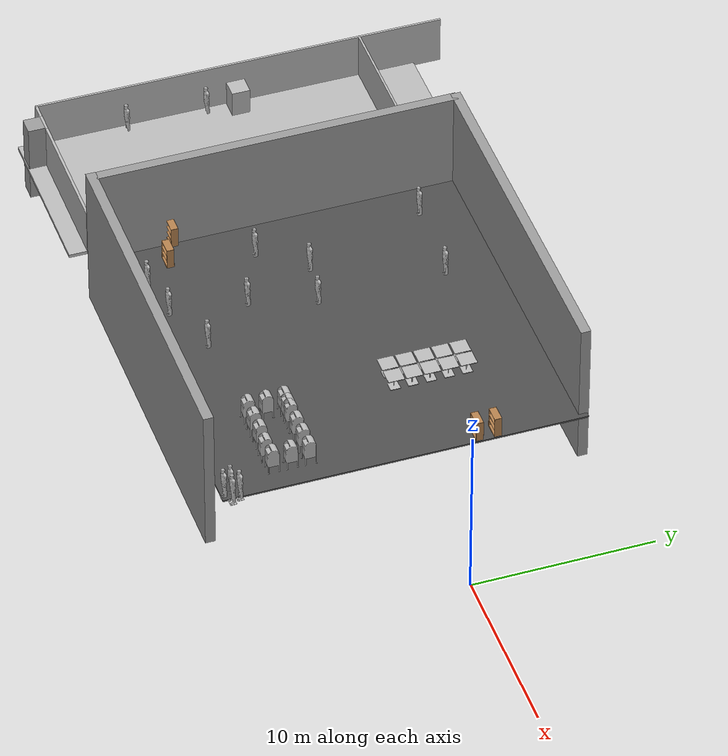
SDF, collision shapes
<sdf version="1.6">
 <model name="indoor_environment_4">
  <link name="link_0">
   <pose>-38.4667 -11.2928 0.5 0 -0 0</pose>
   <inertial>
    <mass>4.65205</mass>
    <inertia><ixx>8.77751</ixx><ixy>0</ixy><ixz>0</ixz><iyy>8.77751</iyy><iyz>0</iyz><izz>0.775344</izz></inertia>
   </inertial>
   <visual name="visual">
    <geometry><box><size>1 1 4.65206</size></box></geometry>
    <material>
     <lighting>1</lighting>
     <script><uri>file://media/materials/scripts/gazebo.material</uri><name>Gazebo/Grey</name></script>
     <ambient>0.3 0.3 0.3 1</ambient>
     <diffuse>0.7 0.7 0.7 1</diffuse>
     <specular>0.01 0.01 0.01 1</specular>
     <emissive>0 0 0 1</emissive>
    </material>
   </visual>
   <collision name="collision">
    <geometry><box><size>1 1 4.65206</size></box></geometry>
    <surface>
     <friction>
      <ode><mu>1</mu><mu2>1</mu2><fdir1>0 0 0</fdir1><slip1>0</slip1><slip2>0</slip2></ode>
      <torsional>
       <coefficient>1</coefficient>
       <patch_radius>0</patch_radius>
       <surface_radius>0</surface_radius>
       <use_patch_radius>1</use_patch_radius>
       <ode><slip>0</slip></ode>
      </torsional>
     </friction>
     <bounce><restitution_coefficient>0</restitution_coefficient><threshold>1e+06</threshold></bounce>
     <contact>
      <collide_without_contact>0</collide_without_contact>
      <collide_without_contact_bitmask>1</collide_without_contact_bitmask>
      <collide_bitmask>1</collide_bitmask>
      <ode>
       <soft_cfm>0</soft_cfm>
       <soft_erp>0.2</soft_erp>
       <kp>1e+13</kp>
       <kd>1</kd>
       <max_vel>0.01</max_vel>
       <min_depth>0</min_depth>
      </ode>
      <bullet>
       <split_impulse>1</split_impulse>
       <split_impulse_penetration_threshold>-0.01</split_impulse_penetration_threshold>
       <soft_cfm>0</soft_cfm>
       <soft_erp>0.2</soft_erp>
       <kp>1e+13</kp>
       <kd>1</kd>
      </bullet>
     </contact>
    </surface>
   </collision>
  </link>
  <model name="asphalt_plane_0">
   <static>1</static>
   <link name="link">
    <collision name="collision"><geometry><box><size>20 20 0.1</size></box></geometry></collision>
    <visual name="visual">
     <cast_shadows>0</cast_shadows>
     <geometry><box><size>20 20 0.1</size></box></geometry>
     <material>
      <script>
       <uri>model://asphalt_plane/materials/scripts</uri>
       <uri>model://asphalt_plane/materials/textures</uri>
       <name>vrc/asphalt</name>
      </script>
     </material>
    </visual>
   </link>
   <pose>-19.9097 0.04344 0 0 -0 0</pose>
  </model>
  <model name="bookshelf">
   <static>1</static>
   <link name="link">
    <inertial><mass>1</mass></inertial>
    <collision name="back">
     <pose>0 0.005 0.6 0 -0 0</pose>
     <geometry><box><size>0.9 0.01 1.2</size></box></geometry>
    </collision>
    <visual name="visual1">
     <pose>0 0.005 0.6 0 -0 0</pose>
     <geometry><box><size>0.9 0.01 1.2</size></box></geometry>
     <material>
      <script><uri>file://media/materials/scripts/gazebo.material</uri><name>Gazebo/Wood</name></script>
     </material>
    </visual>
    <collision name="left_side">
     <pose>0.45 -0.195 0.6 0 -0 0</pose>
     <geometry><box><size>0.02 0.4 1.2</size></box></geometry>
    </collision>
    <visual name="visual2">
     <pose>0.45 -0.195 0.6 0 -0 0</pose>
     <geometry><box><size>0.02 0.4 1.2</size></box></geometry>
     <material>
      <script><uri>file://media/materials/scripts/gazebo.material</uri><name>Gazebo/Wood</name></script>
     </material>
    </visual>
    <collision name="right_side">
     <pose>-0.45 -0.195 0.6 0 -0 0</pose>
     <geometry><box><size>0.02 0.4 1.2</size></box></geometry>
    </collision>
    <visual name="visual3">
     <pose>-0.45 -0.195 0.6 0 -0 0</pose>
     <geometry><box><size>0.02 0.4 1.2</size></box></geometry>
     <material>
      <script><uri>file://media/materials/scripts/gazebo.material</uri><name>Gazebo/Wood</name></script>
     </material>
    </visual>
    <collision name="bottom">
     <pose>0 -0.195 0.03 0 -0 0</pose>
     <geometry><box><size>0.88 0.4 0.06</size></box></geometry>
    </collision>
    <visual name="visual4">
     <pose>0 -0.195 0.03 0 -0 0</pose>
     <geometry><box><size>0.88 0.4 0.06</size></box></geometry>
     <material>
      <script><uri>file://media/materials/scripts/gazebo.material</uri><name>Gazebo/Wood</name></script>
     </material>
    </visual>
    <collision name="top">
     <pose>0 -0.195 1.19 0 -0 0</pose>
     <geometry><box><size>0.88 0.4 0.02</size></box></geometry>
    </collision>
    <visual name="visual5">
     <pose>0 -0.195 1.19 0 -0 0</pose>
     <geometry><box><size>0.88 0.4 0.02</size></box></geometry>
     <material>
      <script><uri>file://media/materials/scripts/gazebo.material</uri><name>Gazebo/Wood</name></script>
     </material>
    </visual>
    <collision name="low_shelf">
     <pose>0 -0.195 0.43 0 -0 0</pose>
     <geometry><box><size>0.88 0.4 0.02</size></box></geometry>
    </collision>
    <visual name="visual6">
     <pose>0 -0.195 0.43 0 -0 0</pose>
     <geometry><box><size>0.88 0.4 0.02</size></box></geometry>
     <material>
      <script><uri>file://media/materials/scripts/gazebo.material</uri><name>Gazebo/Wood</name></script>
     </material>
    </visual>
    <collision name="high_shelf">
     <pose>0 -0.195 0.8 0 -0 0</pose>
     <geometry><box><size>0.88 0.4 0.02</size></box></geometry>
    </collision>
    <visual name="visual7">
     <pose>0 -0.195 0.8 0 -0 0</pose>
     <geometry><box><size>0.88 0.4 0.02</size></box></geometry>
     <material>
      <script><uri>file://media/materials/scripts/gazebo.material</uri><name>Gazebo/Wood</name></script>
     </material>
    </visual>
   </link>
   <pose>-29.4638 -6.22637 0.552309 0 -0 0</pose>
  </model>
  <model name="bookshelf_clone">
   <static>1</static>
   <link name="link">
    <inertial><mass>1</mass></inertial>
    <collision name="back">
     <pose>0 0.005 0.6 0 -0 0</pose>
     <geometry><box><size>0.9 0.01 1.2</size></box></geometry>
    </collision>
    <visual name="visual1">
     <pose>0 0.005 0.6 0 -0 0</pose>
     <geometry><box><size>0.9 0.01 1.2</size></box></geometry>
     <material>
      <script><uri>file://media/materials/scripts/gazebo.material</uri><name>Gazebo/Wood</name></script>
     </material>
    </visual>
    <collision name="left_side">
     <pose>0.45 -0.195 0.6 0 -0 0</pose>
     <geometry><box><size>0.02 0.4 1.2</size></box></geometry>
    </collision>
    <visual name="visual2">
     <pose>0.45 -0.195 0.6 0 -0 0</pose>
     <geometry><box><size>0.02 0.4 1.2</size></box></geometry>
     <material>
      <script><uri>file://media/materials/scripts/gazebo.material</uri><name>Gazebo/Wood</name></script>
     </material>
    </visual>
    <collision name="right_side">
     <pose>-0.45 -0.195 0.6 0 -0 0</pose>
     <geometry><box><size>0.02 0.4 1.2</size></box></geometry>
    </collision>
    <visual name="visual3">
     <pose>-0.45 -0.195 0.6 0 -0 0</pose>
     <geometry><box><size>0.02 0.4 1.2</size></box></geometry>
     <material>
      <script><uri>file://media/materials/scripts/gazebo.material</uri><name>Gazebo/Wood</name></script>
     </material>
    </visual>
    <collision name="bottom">
     <pose>0 -0.195 0.03 0 -0 0</pose>
     <geometry><box><size>0.88 0.4 0.06</size></box></geometry>
    </collision>
    <visual name="visual4">
     <pose>0 -0.195 0.03 0 -0 0</pose>
     <geometry><box><size>0.88 0.4 0.06</size></box></geometry>
     <material>
      <script><uri>file://media/materials/scripts/gazebo.material</uri><name>Gazebo/Wood</name></script>
     </material>
    </visual>
    <collision name="top">
     <pose>0 -0.195 1.19 0 -0 0</pose>
     <geometry><box><size>0.88 0.4 0.02</size></box></geometry>
    </collision>
    <visual name="visual5">
     <pose>0 -0.195 1.19 0 -0 0</pose>
     <geometry><box><size>0.88 0.4 0.02</size></box></geometry>
     <material>
      <script><uri>file://media/materials/scripts/gazebo.material</uri><name>Gazebo/Wood</name></script>
     </material>
    </visual>
    <collision name="low_shelf">
     <pose>0 -0.195 0.43 0 -0 0</pose>
     <geometry><box><size>0.88 0.4 0.02</size></box></geometry>
    </collision>
    <visual name="visual6">
     <pose>0 -0.195 0.43 0 -0 0</pose>
     <geometry><box><size>0.88 0.4 0.02</size></box></geometry>
     <material>
      <script><uri>file://media/materials/scripts/gazebo.material</uri><name>Gazebo/Wood</name></script>
     </material>
    </visual>
    <collision name="high_shelf">
     <pose>0 -0.195 0.8 0 -0 0</pose>
     <geometry><box><size>0.88 0.4 0.02</size></box></geometry>
    </collision>
    <visual name="visual7">
     <pose>0 -0.195 0.8 0 -0 0</pose>
     <geometry><box><size>0.88 0.4 0.02</size></box></geometry>
     <material>
      <script><uri>file://media/materials/scripts/gazebo.material</uri><name>Gazebo/Wood</name></script>
     </material>
    </visual>
   </link>
   <pose>-27.9097 -6.95656 0.552309 0 -0 0</pose>
  </model>
  <model name="bookshelf_clone_12_clone_3">
   <static>1</static>
   <link name="link">
    <inertial><mass>1</mass></inertial>
    <collision name="back">
     <pose>0 0.005 0.6 0 -0 0</pose>
     <geometry><box><size>0.9 0.01 1.2</size></box></geometry>
    </collision>
    <visual name="visual1">
     <pose>0 0.005 0.6 0 -0 0</pose>
     <geometry><box><size>0.9 0.01 1.2</size></box></geometry>
     <material>
      <script><uri>file://media/materials/scripts/gazebo.material</uri><name>Gazebo/Wood</name></script>
     </material>
    </visual>
    <collision name="left_side">
     <pose>0.45 -0.195 0.6 0 -0 0</pose>
     <geometry><box><size>0.02 0.4 1.2</size></box></geometry>
    </collision>
    <visual name="visual2">
     <pose>0.45 -0.195 0.6 0 -0 0</pose>
     <geometry><box><size>0.02 0.4 1.2</size></box></geometry>
     <material>
      <script><uri>file://media/materials/scripts/gazebo.material</uri><name>Gazebo/Wood</name></script>
     </material>
    </visual>
    <collision name="right_side">
     <pose>-0.45 -0.195 0.6 0 -0 0</pose>
     <geometry><box><size>0.02 0.4 1.2</size></box></geometry>
    </collision>
    <visual name="visual3">
     <pose>-0.45 -0.195 0.6 0 -0 0</pose>
     <geometry><box><size>0.02 0.4 1.2</size></box></geometry>
     <material>
      <script><uri>file://media/materials/scripts/gazebo.material</uri><name>Gazebo/Wood</name></script>
     </material>
    </visual>
    <collision name="bottom">
     <pose>0 -0.195 0.03 0 -0 0</pose>
     <geometry><box><size>0.88 0.4 0.06</size></box></geometry>
    </collision>
    <visual name="visual4">
     <pose>0 -0.195 0.03 0 -0 0</pose>
     <geometry><box><size>0.88 0.4 0.06</size></box></geometry>
     <material>
      <script><uri>file://media/materials/scripts/gazebo.material</uri><name>Gazebo/Wood</name></script>
     </material>
    </visual>
    <collision name="top">
     <pose>0 -0.195 1.19 0 -0 0</pose>
     <geometry><box><size>0.88 0.4 0.02</size></box></geometry>
    </collision>
    <visual name="visual5">
     <pose>0 -0.195 1.19 0 -0 0</pose>
     <geometry><box><size>0.88 0.4 0.02</size></box></geometry>
     <material>
      <script><uri>file://media/materials/scripts/gazebo.material</uri><name>Gazebo/Wood</name></script>
     </material>
    </visual>
    <collision name="low_shelf">
     <pose>0 -0.195 0.43 0 -0 0</pose>
     <geometry><box><size>0.88 0.4 0.02</size></box></geometry>
    </collision>
    <visual name="visual6">
     <pose>0 -0.195 0.43 0 -0 0</pose>
     <geometry><box><size>0.88 0.4 0.02</size></box></geometry>
     <material>
      <script><uri>file://media/materials/scripts/gazebo.material</uri><name>Gazebo/Wood</name></script>
     </material>
    </visual>
    <collision name="high_shelf">
     <pose>0 -0.195 0.8 0 -0 0</pose>
     <geometry><box><size>0.88 0.4 0.02</size></box></geometry>
    </collision>
    <visual name="visual7">
     <pose>0 -0.195 0.8 0 -0 0</pose>
     <geometry><box><size>0.88 0.4 0.02</size></box></geometry>
     <material>
      <script><uri>file://media/materials/scripts/gazebo.material</uri><name>Gazebo/Wood</name></script>
     </material>
    </visual>
   </link>
   <pose>-9.9097 5.04344 0.552309 0 -0 0</pose>
  </model>
  <model name="bookshelf_clone_12_clone_8">
   <static>1</static>
   <link name="link">
    <inertial><mass>1</mass></inertial>
    <collision name="back">
     <pose>0 0.005 0.6 0 -0 0</pose>
     <geometry><box><size>0.9 0.01 1.2</size></box></geometry>
    </collision>
    <visual name="visual1">
     <pose>0 0.005 0.6 0 -0 0</pose>
     <geometry><box><size>0.9 0.01 1.2</size></box></geometry>
     <material>
      <script><uri>file://media/materials/scripts/gazebo.material</uri><name>Gazebo/Wood</name></script>
     </material>
    </visual>
    <collision name="left_side">
     <pose>0.45 -0.195 0.6 0 -0 0</pose>
     <geometry><box><size>0.02 0.4 1.2</size></box></geometry>
    </collision>
    <visual name="visual2">
     <pose>0.45 -0.195 0.6 0 -0 0</pose>
     <geometry><box><size>0.02 0.4 1.2</size></box></geometry>
     <material>
      <script><uri>file://media/materials/scripts/gazebo.material</uri><name>Gazebo/Wood</name></script>
     </material>
    </visual>
    <collision name="right_side">
     <pose>-0.45 -0.195 0.6 0 -0 0</pose>
     <geometry><box><size>0.02 0.4 1.2</size></box></geometry>
    </collision>
    <visual name="visual3">
     <pose>-0.45 -0.195 0.6 0 -0 0</pose>
     <geometry><box><size>0.02 0.4 1.2</size></box></geometry>
     <material>
      <script><uri>file://media/materials/scripts/gazebo.material</uri><name>Gazebo/Wood</name></script>
     </material>
    </visual>
    <collision name="bottom">
     <pose>0 -0.195 0.03 0 -0 0</pose>
     <geometry><box><size>0.88 0.4 0.06</size></box></geometry>
    </collision>
    <visual name="visual4">
     <pose>0 -0.195 0.03 0 -0 0</pose>
     <geometry><box><size>0.88 0.4 0.06</size></box></geometry>
     <material>
      <script><uri>file://media/materials/scripts/gazebo.material</uri><name>Gazebo/Wood</name></script>
     </material>
    </visual>
    <collision name="top">
     <pose>0 -0.195 1.19 0 -0 0</pose>
     <geometry><box><size>0.88 0.4 0.02</size></box></geometry>
    </collision>
    <visual name="visual5">
     <pose>0 -0.195 1.19 0 -0 0</pose>
     <geometry><box><size>0.88 0.4 0.02</size></box></geometry>
     <material>
      <script><uri>file://media/materials/scripts/gazebo.material</uri><name>Gazebo/Wood</name></script>
     </material>
    </visual>
    <collision name="low_shelf">
     <pose>0 -0.195 0.43 0 -0 0</pose>
     <geometry><box><size>0.88 0.4 0.02</size></box></geometry>
    </collision>
    <visual name="visual6">
     <pose>0 -0.195 0.43 0 -0 0</pose>
     <geometry><box><size>0.88 0.4 0.02</size></box></geometry>
     <material>
      <script><uri>file://media/materials/scripts/gazebo.material</uri><name>Gazebo/Wood</name></script>
     </material>
    </visual>
    <collision name="high_shelf">
     <pose>0 -0.195 0.8 0 -0 0</pose>
     <geometry><box><size>0.88 0.4 0.02</size></box></geometry>
    </collision>
    <visual name="visual7">
     <pose>0 -0.195 0.8 0 -0 0</pose>
     <geometry><box><size>0.88 0.4 0.02</size></box></geometry>
     <material>
      <script><uri>file://media/materials/scripts/gazebo.material</uri><name>Gazebo/Wood</name></script>
     </material>
    </visual>
   </link>
   <pose>-9.9097 4.04344 0.552309 0 -0 0</pose>
  </model>
  <model name="cafe">
   <static>1</static>
   <link name="link">
    <collision name="main_floor">
     <pose>-0.4 -0.75 0.0948 0 -0 0</pose>
     <geometry><box><size>9.38 22.63 0.19</size></box></geometry>
    </collision>
    <collision name="wall_1">
     <pose>-5.03 0.53 1.415 0 -0 0</pose>
     <geometry><box><size>0.12 23.16 2.83</size></box></geometry>
    </collision>
    <collision name="wall_2">
     <pose>4.24 -0.31 1.415 0 -0 0</pose>
     <geometry><box><size>0.12 21.48 2.83</size></box></geometry>
    </collision>
    <collision name="wall_3">
     <pose>-1.48 7.43 1.415 0 -0 0</pose>
     <geometry><box><size>7.2 0.12 2.83</size></box></geometry>
    </collision>
    <collision name="wall_4">
     <pose>2.09 8.9 1.435 0 -0 0</pose>
     <geometry><box><size>0.12 3.05 2.87</size></box></geometry>
    </collision>
    <collision name="wall_5">
     <pose>3.155 10.4 1.435 0 -0 0</pose>
     <geometry><box><size>2.13 0.12 2.87</size></box></geometry>
    </collision>
    <collision name="wall_6">
     <pose>0.615 -10.98 1.415 0 -0 0</pose>
     <geometry><box><size>7.36 0.15 2.83</size></box></geometry>
    </collision>
    <collision name="wall_7">
     <pose>-4.62 -10.98 1.415 0 -0 0</pose>
     <geometry><box><size>0.93 0.15 2.83</size></box></geometry>
    </collision>
    <collision name="wall_8">
     <pose>-3.61 -10.98 2.69 0 -0 0</pose>
     <geometry><box><size>1.09 0.15 0.28</size></box></geometry>
    </collision>
    <collision name="coke">
     <pose>-4.385 0.26 0.95 0 -0 0</pose>
     <geometry><box><size>1.03 1.03 1.52</size></box></geometry>
    </collision>
    <visual name="visual"><geometry><mesh><uri>model://cafe/meshes/cafe.dae</uri></mesh></geometry></visual>
   </link>
   <pose>-34.8337 0.212639 0 0 -0 0</pose>
  </model>
  <model name="cafe_table_clone_1_clone_clone">
   <static>1</static>
   <link name="link">
    <collision name="surface">
     <pose>0 0 0.755 0 -0 0</pose>
     <geometry><box><size>0.913 0.913 0.04</size></box></geometry>
    </collision>
    <collision name="column">
     <pose>0 0 0.37 0 -0 0</pose>
     <geometry><box><size>0.042 0.042 0.74</size></box></geometry>
    </collision>
    <collision name="base">
     <pose>0 0 0.02 0 -0 0</pose>
     <geometry><box><size>0.56 0.56 0.04</size></box></geometry>
    </collision>
    <visual name="visual">
     <geometry><mesh><uri>model://cafe_table/meshes/cafe_table.dae</uri></mesh></geometry>
    </visual>
   </link>
   <pose>-15.9097 5.04344 0.457011 0 -0 0</pose>
  </model>
  <model name="cafe_table_clone_1_clone_clone_0">
   <static>1</static>
   <link name="link">
    <collision name="surface">
     <pose>0 0 0.755 0 -0 0</pose>
     <geometry><box><size>0.913 0.913 0.04</size></box></geometry>
    </collision>
    <collision name="column">
     <pose>0 0 0.37 0 -0 0</pose>
     <geometry><box><size>0.042 0.042 0.74</size></box></geometry>
    </collision>
    <collision name="base">
     <pose>0 0 0.02 0 -0 0</pose>
     <geometry><box><size>0.56 0.56 0.04</size></box></geometry>
    </collision>
    <visual name="visual">
     <geometry><mesh><uri>model://cafe_table/meshes/cafe_table.dae</uri></mesh></geometry>
    </visual>
   </link>
   <pose>-15.9097 4.04344 0.457011 0 -0 0</pose>
  </model>
  <model name="cafe_table_clone_1_clone_clone_1">
   <static>1</static>
   <link name="link">
    <collision name="surface">
     <pose>0 0 0.755 0 -0 0</pose>
     <geometry><box><size>0.913 0.913 0.04</size></box></geometry>
    </collision>
    <collision name="column">
     <pose>0 0 0.37 0 -0 0</pose>
     <geometry><box><size>0.042 0.042 0.74</size></box></geometry>
    </collision>
    <collision name="base">
     <pose>0 0 0.02 0 -0 0</pose>
     <geometry><box><size>0.56 0.56 0.04</size></box></geometry>
    </collision>
    <visual name="visual">
     <geometry><mesh><uri>model://cafe_table/meshes/cafe_table.dae</uri></mesh></geometry>
    </visual>
   </link>
   <pose>-15.9097 3.04344 0.457011 0 -0 0</pose>
  </model>
  <model name="cafe_table_clone_1_clone_clone_2">
   <static>1</static>
   <link name="link">
    <collision name="surface">
     <pose>0 0 0.755 0 -0 0</pose>
     <geometry><box><size>0.913 0.913 0.04</size></box></geometry>
    </collision>
    <collision name="column">
     <pose>0 0 0.37 0 -0 0</pose>
     <geometry><box><size>0.042 0.042 0.74</size></box></geometry>
    </collision>
    <collision name="base">
     <pose>0 0 0.02 0 -0 0</pose>
     <geometry><box><size>0.56 0.56 0.04</size></box></geometry>
    </collision>
    <visual name="visual">
     <geometry><mesh><uri>model://cafe_table/meshes/cafe_table.dae</uri></mesh></geometry>
    </visual>
   </link>
   <pose>-15.9097 2.04344 0.457011 0 -0 0</pose>
  </model>
  <model name="cafe_table_clone_1_clone_clone_3">
   <static>1</static>
   <link name="link">
    <collision name="surface">
     <pose>0 0 0.755 0 -0 0</pose>
     <geometry><box><size>0.913 0.913 0.04</size></box></geometry>
    </collision>
    <collision name="column">
     <pose>0 0 0.37 0 -0 0</pose>
     <geometry><box><size>0.042 0.042 0.74</size></box></geometry>
    </collision>
    <collision name="base">
     <pose>0 0 0.02 0 -0 0</pose>
     <geometry><box><size>0.56 0.56 0.04</size></box></geometry>
    </collision>
    <visual name="visual">
     <geometry><mesh><uri>model://cafe_table/meshes/cafe_table.dae</uri></mesh></geometry>
    </visual>
   </link>
   <pose>-15.9097 1.04344 0.457011 0 -0 0</pose>
  </model>
  <model name="cafe_table_clone_1_clone_clone_4">
   <static>1</static>
   <link name="link">
    <collision name="surface">
     <pose>0 0 0.755 0 -0 0</pose>
     <geometry><box><size>0.913 0.913 0.04</size></box></geometry>
    </collision>
    <collision name="column">
     <pose>0 0 0.37 0 -0 0</pose>
     <geometry><box><size>0.042 0.042 0.74</size></box></geometry>
    </collision>
    <collision name="base">
     <pose>0 0 0.02 0 -0 0</pose>
     <geometry><box><size>0.56 0.56 0.04</size></box></geometry>
    </collision>
    <visual name="visual">
     <geometry><mesh><uri>model://cafe_table/meshes/cafe_table.dae</uri></mesh></geometry>
    </visual>
   </link>
   <pose>-14.9097 5.04344 0.457011 0 -0 0</pose>
  </model>
  <model name="cafe_table_clone_1_clone_clone_5">
   <static>1</static>
   <link name="link">
    <collision name="surface">
     <pose>0 0 0.755 0 -0 0</pose>
     <geometry><box><size>0.913 0.913 0.04</size></box></geometry>
    </collision>
    <collision name="column">
     <pose>0 0 0.37 0 -0 0</pose>
     <geometry><box><size>0.042 0.042 0.74</size></box></geometry>
    </collision>
    <collision name="base">
     <pose>0 0 0.02 0 -0 0</pose>
     <geometry><box><size>0.56 0.56 0.04</size></box></geometry>
    </collision>
    <visual name="visual">
     <geometry><mesh><uri>model://cafe_table/meshes/cafe_table.dae</uri></mesh></geometry>
    </visual>
   </link>
   <pose>-14.9097 4.04344 0.457011 0 -0 0</pose>
  </model>
  <model name="cafe_table_clone_1_clone_clone_6">
   <static>1</static>
   <link name="link">
    <collision name="surface">
     <pose>0 0 0.755 0 -0 0</pose>
     <geometry><box><size>0.913 0.913 0.04</size></box></geometry>
    </collision>
    <collision name="column">
     <pose>0 0 0.37 0 -0 0</pose>
     <geometry><box><size>0.042 0.042 0.74</size></box></geometry>
    </collision>
    <collision name="base">
     <pose>0 0 0.02 0 -0 0</pose>
     <geometry><box><size>0.56 0.56 0.04</size></box></geometry>
    </collision>
    <visual name="visual">
     <geometry><mesh><uri>model://cafe_table/meshes/cafe_table.dae</uri></mesh></geometry>
    </visual>
   </link>
   <pose>-14.9097 3.04344 0.457011 0 -0 0</pose>
  </model>
  <model name="cafe_table_clone_1_clone_clone_7">
   <static>1</static>
   <link name="link">
    <collision name="surface">
     <pose>0 0 0.755 0 -0 0</pose>
     <geometry><box><size>0.913 0.913 0.04</size></box></geometry>
    </collision>
    <collision name="column">
     <pose>0 0 0.37 0 -0 0</pose>
     <geometry><box><size>0.042 0.042 0.74</size></box></geometry>
    </collision>
    <collision name="base">
     <pose>0 0 0.02 0 -0 0</pose>
     <geometry><box><size>0.56 0.56 0.04</size></box></geometry>
    </collision>
    <visual name="visual">
     <geometry><mesh><uri>model://cafe_table/meshes/cafe_table.dae</uri></mesh></geometry>
    </visual>
   </link>
   <pose>-14.9097 2.04344 0.457011 0 -0 0</pose>
  </model>
  <model name="cafe_table_clone_1_clone_clone_8">
   <static>1</static>
   <link name="link">
    <collision name="surface">
     <pose>0 0 0.755 0 -0 0</pose>
     <geometry><box><size>0.913 0.913 0.04</size></box></geometry>
    </collision>
    <collision name="column">
     <pose>0 0 0.37 0 -0 0</pose>
     <geometry><box><size>0.042 0.042 0.74</size></box></geometry>
    </collision>
    <collision name="base">
     <pose>0 0 0.02 0 -0 0</pose>
     <geometry><box><size>0.56 0.56 0.04</size></box></geometry>
    </collision>
    <visual name="visual">
     <geometry><mesh><uri>model://cafe_table/meshes/cafe_table.dae</uri></mesh></geometry>
    </visual>
   </link>
   <pose>-14.9097 1.04344 0.457011 0 -0 0</pose>
  </model>
  <model name="grey_wall_mw_clone">
   <link name="link">
    <pose>-8.81665 -2.69351 1.4 0 -0 0</pose>
    <inertial>
     <inertia><ixx>nan</ixx><ixy>0</ixy><ixz>0</ixz><iyy>nan</iyy><iyz>0</iyz><izz>nan</izz></inertia>
     <mass>0</mass>
    </inertial>
    <visual name="visual">
     <cast_shadows>0</cast_shadows>
     <geometry><box><size>20.2056 0.556506 8.63552</size></box></geometry>
     <material>
      <script>
       <uri>model://grey_wall/materials/scripts</uri>
       <uri>model://grey_wall/materials/textures</uri>
       <name>vrc/grey_wall</name>
      </script>
      <ambient>1 1 1 1</ambient>
      <diffuse>1 1 1 1</diffuse>
      <specular>0 0 0 1</specular>
      <emissive>0 0 0 1</emissive>
     </material>
    </visual>
    <collision name="collision">
     <geometry><box><size>20.2056 0.556506 8.63552</size></box></geometry>
     <surface>
      <friction>
       <ode><mu>1</mu><mu2>1</mu2><fdir1>0 0 0</fdir1><slip1>0</slip1><slip2>0</slip2></ode>
       <torsional>
        <coefficient>1</coefficient>
        <patch_radius>0</patch_radius>
        <surface_radius>0</surface_radius>
        <use_patch_radius>1</use_patch_radius>
        <ode><slip>0</slip></ode>
       </torsional>
      </friction>
      <bounce><restitution_coefficient>0</restitution_coefficient><threshold>1e+06</threshold></bounce>
      <contact>
       <collide_without_contact>0</collide_without_contact>
       <collide_without_contact_bitmask>1</collide_without_contact_bitmask>
       <collide_bitmask>1</collide_bitmask>
       <ode>
        <soft_cfm>0</soft_cfm>
        <soft_erp>0.2</soft_erp>
        <kp>1e+13</kp>
        <kd>1</kd>
        <max_vel>0.01</max_vel>
        <min_depth>0</min_depth>
       </ode>
       <bullet>
        <split_impulse>1</split_impulse>
        <split_impulse_penetration_threshold>-0.01</split_impulse_penetration_threshold>
        <soft_cfm>0</soft_cfm>
        <soft_erp>0.2</soft_erp>
        <kp>1e+13</kp>
        <kd>1</kd>
       </bullet>
      </contact>
     </surface>
    </collision>
   </link>
   <static>1</static>
   <pose>-11.4681 12.5307 0 0 -0 0</pose>
  </model>
  <model name="grey_wall_mw_clone_0">
   <link name="link">
    <pose>-8.81665 -2.69351 1.4 0 -0 0</pose>
    <inertial>
     <inertia><ixx>nan</ixx><ixy>0</ixy><ixz>0</ixz><iyy>nan</iyy><iyz>0</iyz><izz>nan</izz></inertia>
     <mass>0</mass>
    </inertial>
    <visual name="visual">
     <cast_shadows>0</cast_shadows>
     <geometry><box><size>20.2056 0.556506 8.63552</size></box></geometry>
     <material>
      <script>
       <uri>model://grey_wall/materials/scripts</uri>
       <uri>model://grey_wall/materials/textures</uri>
       <name>vrc/grey_wall</name>
      </script>
      <ambient>1 1 1 1</ambient>
      <diffuse>1 1 1 1</diffuse>
      <specular>0 0 0 1</specular>
      <emissive>0 0 0 1</emissive>
     </material>
    </visual>
    <collision name="collision">
     <geometry><box><size>20.2056 0.556506 8.63552</size></box></geometry>
     <surface>
      <friction>
       <ode><mu>1</mu><mu2>1</mu2><fdir1>0 0 0</fdir1><slip1>0</slip1><slip2>0</slip2></ode>
       <torsional>
        <coefficient>1</coefficient>
        <patch_radius>0</patch_radius>
        <surface_radius>0</surface_radius>
        <use_patch_radius>1</use_patch_radius>
        <ode><slip>0</slip></ode>
       </torsional>
      </friction>
      <bounce><restitution_coefficient>0</restitution_coefficient><threshold>1e+06</threshold></bounce>
      <contact>
       <collide_without_contact>0</collide_without_contact>
       <collide_without_contact_bitmask>1</collide_without_contact_bitmask>
       <collide_bitmask>1</collide_bitmask>
       <ode>
        <soft_cfm>0</soft_cfm>
        <soft_erp>0.2</soft_erp>
        <kp>1e+13</kp>
        <kd>1</kd>
        <max_vel>0.01</max_vel>
        <min_depth>0</min_depth>
       </ode>
       <bullet>
        <split_impulse>1</split_impulse>
        <split_impulse_penetration_threshold>-0.01</split_impulse_penetration_threshold>
        <soft_cfm>0</soft_cfm>
        <soft_erp>0.2</soft_erp>
        <kp>1e+13</kp>
        <kd>1</kd>
       </bullet>
      </contact>
     </surface>
    </collision>
   </link>
   <static>1</static>
   <pose>-32.8438 8.53787 0 0 -0 1.57436</pose>
  </model>
  <model name="grey_wall_mw_clone_clone">
   <link name="link">
    <pose>-8.81665 -2.69351 1.4 0 -0 0</pose>
    <inertial>
     <inertia><ixx>nan</ixx><ixy>0</ixy><ixz>0</ixz><iyy>nan</iyy><iyz>0</iyz><izz>nan</izz></inertia>
     <mass>0</mass>
    </inertial>
    <visual name="visual">
     <cast_shadows>0</cast_shadows>
     <geometry><box><size>20.2056 0.556506 8.63552</size></box></geometry>
     <material>
      <script>
       <uri>model://grey_wall/materials/scripts</uri>
       <uri>model://grey_wall/materials/textures</uri>
       <name>vrc/grey_wall</name>
      </script>
      <ambient>1 1 1 1</ambient>
      <diffuse>1 1 1 1</diffuse>
      <specular>0 0 0 1</specular>
      <emissive>0 0 0 1</emissive>
     </material>
    </visual>
    <collision name="collision">
     <geometry><box><size>20.2056 0.556506 8.63552</size></box></geometry>
     <surface>
      <friction>
       <ode><mu>1</mu><mu2>1</mu2><fdir1>0 0 0</fdir1><slip1>0</slip1><slip2>0</slip2></ode>
       <torsional>
        <coefficient>1</coefficient>
        <patch_radius>0</patch_radius>
        <surface_radius>0</surface_radius>
        <use_patch_radius>1</use_patch_radius>
        <ode><slip>0</slip></ode>
       </torsional>
      </friction>
      <bounce><restitution_coefficient>0</restitution_coefficient><threshold>1e+06</threshold></bounce>
      <contact>
       <collide_without_contact>0</collide_without_contact>
       <collide_without_contact_bitmask>1</collide_without_contact_bitmask>
       <collide_bitmask>1</collide_bitmask>
       <ode>
        <soft_cfm>0</soft_cfm>
        <soft_erp>0.2</soft_erp>
        <kp>1e+13</kp>
        <kd>1</kd>
        <max_vel>0.01</max_vel>
        <min_depth>0</min_depth>
       </ode>
       <bullet>
        <split_impulse>1</split_impulse>
        <split_impulse_penetration_threshold>-0.01</split_impulse_penetration_threshold>
        <soft_cfm>0</soft_cfm>
        <soft_erp>0.2</soft_erp>
        <kp>1e+13</kp>
        <kd>1</kd>
       </bullet>
      </contact>
     </surface>
    </collision>
   </link>
   <static>1</static>
   <pose>-11.4609 -7.88749 0 0 -0 0</pose>
  </model>
  <model name="person_standing_clone_25">
   <link name="link">
    <inertial>
     <pose>0 -0.1 0.95 0 -0 0</pose>
     <mass>80</mass>
     <inertia><ixx>24.88</ixx><ixy>0</ixy><ixz>0</ixz><iyy>25.73</iyy><iyz>0</iyz><izz>2.48</izz></inertia>
    </inertial>
    <collision name="bottom">
     <pose>0 -0.1 0.01 0 -0 0</pose>
     <geometry><box><size>0.5 0.35 0.02</size></box></geometry>
    </collision>
    <collision name="person">
     <pose>0 0 0.02 0.04 -0 0</pose>
     <geometry><mesh><uri>model://person_standing/meshes/standing.dae</uri></mesh></geometry>
    </collision>
    <visual name="visual">
     <pose>0 0 0.02 0.04 -0 0</pose>
     <geometry><mesh><uri>model://person_standing/meshes/standing.dae</uri></mesh></geometry>
    </visual>
   </link>
   <pose>-24.4876 -8.1288 0 0 -0 0</pose>
  </model>
  <model name="person_standing_clone_26">
   <link name="link">
    <inertial>
     <pose>0 -0.1 0.95 0 -0 0</pose>
     <mass>80</mass>
     <inertia><ixx>24.88</ixx><ixy>0</ixy><ixz>0</ixz><iyy>25.73</iyy><iyz>0</iyz><izz>2.48</izz></inertia>
    </inertial>
    <collision name="bottom">
     <pose>0 -0.1 0.01 0 -0 0</pose>
     <geometry><box><size>0.5 0.35 0.02</size></box></geometry>
    </collision>
    <collision name="person">
     <pose>0 0 0.02 0.04 -0 0</pose>
     <geometry><mesh><uri>model://person_standing/meshes/standing.dae</uri></mesh></geometry>
    </collision>
    <visual name="visual">
     <pose>0 0 0.02 0.04 -0 0</pose>
     <geometry><mesh><uri>model://person_standing/meshes/standing.dae</uri></mesh></geometry>
    </visual>
   </link>
   <pose>-26.9097 -8.54267 0 0 -0 0</pose>
  </model>
  <model name="person_standing_clone_27">
   <link name="link">
    <inertial>
     <pose>0 -0.1 0.95 0 -0 0</pose>
     <mass>80</mass>
     <inertia><ixx>24.88</ixx><ixy>0</ixy><ixz>0</ixz><iyy>25.73</iyy><iyz>0</iyz><izz>2.48</izz></inertia>
    </inertial>
    <collision name="bottom">
     <pose>0 -0.1 0.01 0 -0 0</pose>
     <geometry><box><size>0.5 0.35 0.02</size></box></geometry>
    </collision>
    <collision name="person">
     <pose>0 0 0.02 0.04 -0 0</pose>
     <geometry><mesh><uri>model://person_standing/meshes/standing.dae</uri></mesh></geometry>
    </collision>
    <visual name="visual">
     <pose>0 0 0.02 0.04 -0 0</pose>
     <geometry><mesh><uri>model://person_standing/meshes/standing.dae</uri></mesh></geometry>
    </visual>
   </link>
   <pose>-22.858 -0.371187 0 0 -0 0</pose>
  </model>
  <model name="person_standing_clone_28">
   <link name="link">
    <inertial>
     <pose>0 -0.1 0.95 0 -0 0</pose>
     <mass>80</mass>
     <inertia><ixx>24.88</ixx><ixy>0</ixy><ixz>0</ixz><iyy>25.73</iyy><iyz>0</iyz><izz>2.48</izz></inertia>
    </inertial>
    <collision name="bottom">
     <pose>0 -0.1 0.01 0 -0 0</pose>
     <geometry><box><size>0.5 0.35 0.02</size></box></geometry>
    </collision>
    <collision name="person">
     <pose>0 0 0.02 0.04 -0 0</pose>
     <geometry><mesh><uri>model://person_standing/meshes/standing.dae</uri></mesh></geometry>
    </collision>
    <visual name="visual">
     <pose>0 0 0.02 0.04 -0 0</pose>
     <geometry><mesh><uri>model://person_standing/meshes/standing.dae</uri></mesh></geometry>
    </visual>
   </link>
   <pose>-25.4901 0.04344 0 0 -0 0</pose>
  </model>
  <model name="person_standing_clone_29">
   <link name="link">
    <inertial>
     <pose>0 -0.1 0.95 0 -0 0</pose>
     <mass>80</mass>
     <inertia><ixx>24.88</ixx><ixy>0</ixy><ixz>0</ixz><iyy>25.73</iyy><iyz>0</iyz><izz>2.48</izz></inertia>
    </inertial>
    <collision name="bottom">
     <pose>0 -0.1 0.01 0 -0 0</pose>
     <geometry><box><size>0.5 0.35 0.02</size></box></geometry>
    </collision>
    <collision name="person">
     <pose>0 0 0.02 0.04 -0 0</pose>
     <geometry><mesh><uri>model://person_standing/meshes/standing.dae</uri></mesh></geometry>
    </collision>
    <visual name="visual">
     <pose>0 0 0.02 0.04 -0 0</pose>
     <geometry><mesh><uri>model://person_standing/meshes/standing.dae</uri></mesh></geometry>
    </visual>
   </link>
   <pose>-27.5303 -2.34522 0 0 -0 0</pose>
  </model>
  <model name="person_standing_clone_29_clone">
   <link name="link">
    <inertial>
     <pose>0 -0.1 0.95 0 -0 0</pose>
     <mass>80</mass>
     <inertia><ixx>24.88</ixx><ixy>0</ixy><ixz>0</ixz><iyy>25.73</iyy><iyz>0</iyz><izz>2.48</izz></inertia>
    </inertial>
    <collision name="bottom">
     <pose>0 -0.1 0.01 0 -0 0</pose>
     <geometry><box><size>0.5 0.35 0.02</size></box></geometry>
    </collision>
    <collision name="person">
     <pose>0 0 0.02 0.04 -0 0</pose>
     <geometry><mesh><uri>model://person_standing/meshes/standing.dae</uri></mesh></geometry>
    </collision>
    <visual name="visual">
     <pose>0 0 0.02 0.04 -0 0</pose>
     <geometry><mesh><uri>model://person_standing/meshes/standing.dae</uri></mesh></geometry>
    </visual>
   </link>
   <pose>-39.4667 -5.72114 0 0 -0 0</pose>
  </model>
  <model name="person_standing_clone_29_clone_0">
   <link name="link">
    <inertial>
     <pose>0 -0.1 0.95 0 -0 0</pose>
     <mass>80</mass>
     <inertia><ixx>24.88</ixx><ixy>0</ixy><ixz>0</ixz><iyy>25.73</iyy><iyz>0</iyz><izz>2.48</izz></inertia>
    </inertial>
    <collision name="bottom">
     <pose>0 -0.1 0.01 0 -0 0</pose>
     <geometry><box><size>0.5 0.35 0.02</size></box></geometry>
    </collision>
    <collision name="person">
     <pose>0 0 0.02 0.04 -0 0</pose>
     <geometry><mesh><uri>model://person_standing/meshes/standing.dae</uri></mesh></geometry>
    </collision>
    <visual name="visual">
     <pose>0 0 0.02 0.04 -0 0</pose>
     <geometry><mesh><uri>model://person_standing/meshes/standing.dae</uri></mesh></geometry>
    </visual>
   </link>
   <pose>-39.4667 -1.18286 0 0 -0 0</pose>
  </model>
  <model name="person_standing_clone_30">
   <link name="link">
    <inertial>
     <pose>0 -0.1 0.95 0 -0 0</pose>
     <mass>80</mass>
     <inertia><ixx>24.88</ixx><ixy>0</ixy><ixz>0</ixz><iyy>25.73</iyy><iyz>0</iyz><izz>2.48</izz></inertia>
    </inertial>
    <collision name="bottom">
     <pose>0 -0.1 0.01 0 -0 0</pose>
     <geometry><box><size>0.5 0.35 0.02</size></box></geometry>
    </collision>
    <collision name="person">
     <pose>0 0 0.02 0.04 -0 0</pose>
     <geometry><mesh><uri>model://person_standing/meshes/standing.dae</uri></mesh></geometry>
    </collision>
    <visual name="visual">
     <pose>0 0 0.02 0.04 -0 0</pose>
     <geometry><mesh><uri>model://person_standing/meshes/standing.dae</uri></mesh></geometry>
    </visual>
   </link>
   <pose>-23.9097 -3.95656 0 0 -0 0</pose>
  </model>
  <model name="person_standing_clone_31">
   <link name="link">
    <inertial>
     <pose>0 -0.1 0.95 0 -0 0</pose>
     <mass>80</mass>
     <inertia><ixx>24.88</ixx><ixy>0</ixy><ixz>0</ixz><iyy>25.73</iyy><iyz>0</iyz><izz>2.48</izz></inertia>
    </inertial>
    <collision name="bottom">
     <pose>0 -0.1 0.01 0 -0 0</pose>
     <geometry><box><size>0.5 0.35 0.02</size></box></geometry>
    </collision>
    <collision name="person">
     <pose>0 0 0.02 0.04 -0 0</pose>
     <geometry><mesh><uri>model://person_standing/meshes/standing.dae</uri></mesh></geometry>
    </collision>
    <visual name="visual">
     <pose>0 0 0.02 0.04 -0 0</pose>
     <geometry><mesh><uri>model://person_standing/meshes/standing.dae</uri></mesh></geometry>
    </visual>
   </link>
   <pose>-21.4289 -6.95656 0 0 -0 0</pose>
  </model>
  <model name="person_standing_clone_32">
   <link name="link">
    <inertial>
     <pose>0 -0.1 0.95 0 -0 0</pose>
     <mass>80</mass>
     <inertia><ixx>24.88</ixx><ixy>0</ixy><ixz>0</ixz><iyy>25.73</iyy><iyz>0</iyz><izz>2.48</izz></inertia>
    </inertial>
    <collision name="bottom">
     <pose>0 -0.1 0.01 0 -0 0</pose>
     <geometry><box><size>0.5 0.35 0.02</size></box></geometry>
    </collision>
    <collision name="person">
     <pose>0 0 0.02 0.04 -0 0</pose>
     <geometry><mesh><uri>model://person_standing/meshes/standing.dae</uri></mesh></geometry>
    </collision>
    <visual name="visual">
     <pose>0 0 0.02 0.04 -0 0</pose>
     <geometry><mesh><uri>model://person_standing/meshes/standing.dae</uri></mesh></geometry>
    </visual>
   </link>
   <pose>-22.9003 6.75863 0 0 -0 0</pose>
  </model>
  <model name="person_standing_clone_33">
   <link name="link">
    <inertial>
     <pose>0 -0.1 0.95 0 -0 0</pose>
     <mass>80</mass>
     <inertia><ixx>24.88</ixx><ixy>0</ixy><ixz>0</ixz><iyy>25.73</iyy><iyz>0</iyz><izz>2.48</izz></inertia>
    </inertial>
    <collision name="bottom">
     <pose>0 -0.1 0.01 0 -0 0</pose>
     <geometry><box><size>0.5 0.35 0.02</size></box></geometry>
    </collision>
    <collision name="person">
     <pose>0 0 0.02 0.04 -0 0</pose>
     <geometry><mesh><uri>model://person_standing/meshes/standing.dae</uri></mesh></geometry>
    </collision>
    <visual name="visual">
     <pose>0 0 0.02 0.04 -0 0</pose>
     <geometry><mesh><uri>model://person_standing/meshes/standing.dae</uri></mesh></geometry>
    </visual>
   </link>
   <pose>-27.9097 7.04344 0 0 -0 0</pose>
  </model>
  <model name="person_standing_clone_4">
   <link name="link">
    <inertial>
     <pose>0 -0.1 0.95 0 -0 0</pose>
     <mass>80</mass>
     <inertia><ixx>24.88</ixx><ixy>0</ixy><ixz>0</ixz><iyy>25.73</iyy><iyz>0</iyz><izz>2.48</izz></inertia>
    </inertial>
    <collision name="bottom">
     <pose>0 -0.1 0.01 0 -0 0</pose>
     <geometry><box><size>0.5 0.35 0.02</size></box></geometry>
    </collision>
    <collision name="person">
     <pose>0 0 0.02 0.04 -0 0</pose>
     <geometry><mesh><uri>model://person_standing/meshes/standing.dae</uri></mesh></geometry>
    </collision>
    <visual name="visual">
     <pose>0 0 0.02 0.04 -0 0</pose>
     <geometry><mesh><uri>model://person_standing/meshes/standing.dae</uri></mesh></geometry>
    </visual>
   </link>
   <pose>-9.9097 -8.95656 0 0 -0 0</pose>
  </model>
  <model name="person_standing_clone_5">
   <link name="link">
    <inertial>
     <pose>0 -0.1 0.95 0 -0 0</pose>
     <mass>80</mass>
     <inertia><ixx>24.88</ixx><ixy>0</ixy><ixz>0</ixz><iyy>25.73</iyy><iyz>0</iyz><izz>2.48</izz></inertia>
    </inertial>
    <collision name="bottom">
     <pose>0 -0.1 0.01 0 -0 0</pose>
     <geometry><box><size>0.5 0.35 0.02</size></box></geometry>
    </collision>
    <collision name="person">
     <pose>0 0 0.02 0.04 -0 0</pose>
     <geometry><mesh><uri>model://person_standing/meshes/standing.dae</uri></mesh></geometry>
    </collision>
    <visual name="visual">
     <pose>0 0 0.02 0.04 -0 0</pose>
     <geometry><mesh><uri>model://person_standing/meshes/standing.dae</uri></mesh></geometry>
    </visual>
   </link>
   <pose>-9.72322 -9.41296 0 0 -0 0</pose>
  </model>
  <model name="person_standing_clone_7">
   <link name="link">
    <inertial>
     <pose>0 -0.1 0.95 0 -0 0</pose>
     <mass>80</mass>
     <inertia><ixx>24.88</ixx><ixy>0</ixy><ixz>0</ixz><iyy>25.73</iyy><iyz>0</iyz><izz>2.48</izz></inertia>
    </inertial>
    <collision name="bottom">
     <pose>0 -0.1 0.01 0 -0 0</pose>
     <geometry><box><size>0.5 0.35 0.02</size></box></geometry>
    </collision>
    <collision name="person">
     <pose>0 0 0.02 0.04 -0 0</pose>
     <geometry><mesh><uri>model://person_standing/meshes/standing.dae</uri></mesh></geometry>
    </collision>
    <visual name="visual">
     <pose>0 0 0.02 0.04 -0 0</pose>
     <geometry><mesh><uri>model://person_standing/meshes/standing.dae</uri></mesh></geometry>
    </visual>
   </link>
   <pose>-10.4231 -9.28325 0 0 -0 0</pose>
  </model>
  <model name="person_standing_clone_8">
   <link name="link">
    <inertial>
     <pose>0 -0.1 0.95 0 -0 0</pose>
     <mass>80</mass>
     <inertia><ixx>24.88</ixx><ixy>0</ixy><ixz>0</ixz><iyy>25.73</iyy><iyz>0</iyz><izz>2.48</izz></inertia>
    </inertial>
    <collision name="bottom">
     <pose>0 -0.1 0.01 0 -0 0</pose>
     <geometry><box><size>0.5 0.35 0.02</size></box></geometry>
    </collision>
    <collision name="person">
     <pose>0 0 0.02 0.04 -0 0</pose>
     <geometry><mesh><uri>model://person_standing/meshes/standing.dae</uri></mesh></geometry>
    </collision>
    <visual name="visual">
     <pose>0 0 0.02 0.04 -0 0</pose>
     <geometry><mesh><uri>model://person_standing/meshes/standing.dae</uri></mesh></geometry>
    </visual>
   </link>
   <pose>-10.2559 -9.71009 0 0 -0 0</pose>
  </model>
  <model name="postbox_clone_0_clone">
   <static>1</static>
   <link name="link">
    <collision name="collision">
     <geometry><mesh><uri>model://postbox/meshes/postbox.dae</uri></mesh></geometry>
    </collision>
    <visual name="visual"><geometry><mesh><uri>model://postbox/meshes/postbox.dae</uri></mesh></geometry></visual>
   </link>
   <pose>-14.9097 -4.95656 0.49508 0 -0 0</pose>
  </model>
  <model name="postbox_clone_0_clone_0">
   <static>1</static>
   <link name="link">
    <collision name="collision">
     <geometry><mesh><uri>model://postbox/meshes/postbox.dae</uri></mesh></geometry>
    </collision>
    <visual name="visual"><geometry><mesh><uri>model://postbox/meshes/postbox.dae</uri></mesh></geometry></visual>
   </link>
   <pose>-14.32 -4.95656 0.49508 0 -0 0</pose>
  </model>
  <model name="postbox_clone_0_clone_1">
   <static>1</static>
   <link name="link">
    <collision name="collision">
     <geometry><mesh><uri>model://postbox/meshes/postbox.dae</uri></mesh></geometry>
    </collision>
    <visual name="visual"><geometry><mesh><uri>model://postbox/meshes/postbox.dae</uri></mesh></geometry></visual>
   </link>
   <pose>-13.9097 -4.95656 0.49508 0 -0 0</pose>
  </model>
  <model name="postbox_clone_0_clone_10">
   <static>1</static>
   <link name="link">
    <collision name="collision">
     <geometry><mesh><uri>model://postbox/meshes/postbox.dae</uri></mesh></geometry>
    </collision>
    <visual name="visual"><geometry><mesh><uri>model://postbox/meshes/postbox.dae</uri></mesh></geometry></visual>
   </link>
   <pose>-14.9097 -6.95656 0.49508 0 -0 0</pose>
  </model>
  <model name="postbox_clone_0_clone_11">
   <static>1</static>
   <link name="link">
    <collision name="collision">
     <geometry><mesh><uri>model://postbox/meshes/postbox.dae</uri></mesh></geometry>
    </collision>
    <visual name="visual"><geometry><mesh><uri>model://postbox/meshes/postbox.dae</uri></mesh></geometry></visual>
   </link>
   <pose>-13.9097 -6.95656 0.49508 0 -0 0</pose>
  </model>
  <model name="postbox_clone_0_clone_12">
   <static>1</static>
   <link name="link">
    <collision name="collision">
     <geometry><mesh><uri>model://postbox/meshes/postbox.dae</uri></mesh></geometry>
    </collision>
    <visual name="visual"><geometry><mesh><uri>model://postbox/meshes/postbox.dae</uri></mesh></geometry></visual>
   </link>
   <pose>-12.9097 -6.95656 0.49508 0 -0 0</pose>
  </model>
  <model name="postbox_clone_0_clone_13">
   <static>1</static>
   <link name="link">
    <collision name="collision">
     <geometry><mesh><uri>model://postbox/meshes/postbox.dae</uri></mesh></geometry>
    </collision>
    <visual name="visual"><geometry><mesh><uri>model://postbox/meshes/postbox.dae</uri></mesh></geometry></visual>
   </link>
   <pose>-11.8342 -7.02157 0.49508 0 -0 0</pose>
  </model>
  <model name="postbox_clone_0_clone_14">
   <static>1</static>
   <link name="link">
    <collision name="collision">
     <geometry><mesh><uri>model://postbox/meshes/postbox.dae</uri></mesh></geometry>
    </collision>
    <visual name="visual"><geometry><mesh><uri>model://postbox/meshes/postbox.dae</uri></mesh></geometry></visual>
   </link>
   <pose>-10.9097 -6.95656 0.49508 0 -0 0</pose>
  </model>
  <model name="postbox_clone_0_clone_2">
   <static>1</static>
   <link name="link">
    <collision name="collision">
     <geometry><mesh><uri>model://postbox/meshes/postbox.dae</uri></mesh></geometry>
    </collision>
    <visual name="visual"><geometry><mesh><uri>model://postbox/meshes/postbox.dae</uri></mesh></geometry></visual>
   </link>
   <pose>-12.9097 -4.95656 0.49508 0 -0 0</pose>
  </model>
  <model name="postbox_clone_0_clone_3">
   <static>1</static>
   <link name="link">
    <collision name="collision">
     <geometry><mesh><uri>model://postbox/meshes/postbox.dae</uri></mesh></geometry>
    </collision>
    <visual name="visual"><geometry><mesh><uri>model://postbox/meshes/postbox.dae</uri></mesh></geometry></visual>
   </link>
   <pose>-14.9097 -5.95656 0.49508 0 -0 0</pose>
  </model>
  <model name="postbox_clone_0_clone_7">
   <static>1</static>
   <link name="link">
    <collision name="collision">
     <geometry><mesh><uri>model://postbox/meshes/postbox.dae</uri></mesh></geometry>
    </collision>
    <visual name="visual"><geometry><mesh><uri>model://postbox/meshes/postbox.dae</uri></mesh></geometry></visual>
   </link>
   <pose>-11.9097 -4.95656 0.49508 0 -0 0</pose>
  </model>
  <model name="postbox_clone_0_clone_8">
   <static>1</static>
   <link name="link">
    <collision name="collision">
     <geometry><mesh><uri>model://postbox/meshes/postbox.dae</uri></mesh></geometry>
    </collision>
    <visual name="visual"><geometry><mesh><uri>model://postbox/meshes/postbox.dae</uri></mesh></geometry></visual>
   </link>
   <pose>-10.9097 -4.95656 0.49508 0 -0 0</pose>
  </model>
  <model name="postbox_clone_0_clone_9">
   <static>1</static>
   <link name="link">
    <collision name="collision">
     <geometry><mesh><uri>model://postbox/meshes/postbox.dae</uri></mesh></geometry>
    </collision>
    <visual name="visual"><geometry><mesh><uri>model://postbox/meshes/postbox.dae</uri></mesh></geometry></visual>
   </link>
   <pose>-10.9097 -5.95656 0.49508 0 -0 0</pose>
  </model>
  <static>1</static>
 </model>
</sdf>
